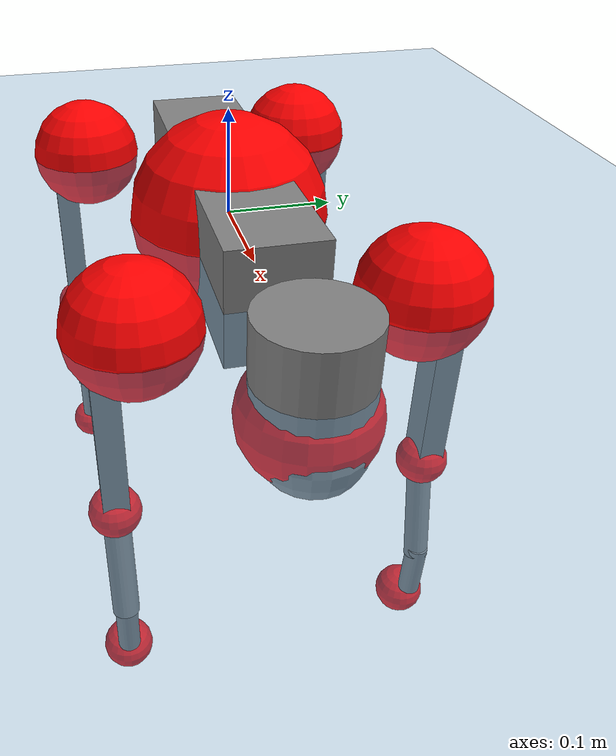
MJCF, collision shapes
<mujoco model="go2">
  <compiler angle="radian" assetdir="assets" balanceinertia="true" inertiafromgeom="false"/>

  <option timestep="0.005" density="1.2" viscosity="2e-05"/>

  <size nkey="1"/>

  <visual>
    <quality shadowsize="8192"/>
    <map shadowclip="0.5"/>
  </visual>

  <default>
    <default class="/">
      <geom contype="0" conaffinity="0" group="1" solref="-1000 -80"/>
      <site size="0.01 0.005 0.005" group="5"/>
      <general forcelimited="true" biastype="affine" gainprm="20" biasprm="0 -20 -0.5"/>
      <default class="go2">
        <joint armature="0.01" damping="0.01" frictionloss="0.2"/>
        <geom condim="1" margin="0.001"/>
        <default class="visual">
          <geom type="mesh" group="2"/>
        </default>
        <default class="collision">
          <geom group="3"/>
          <default class="foot">
            <geom size="0.022 0 0" condim="6" priority="1" friction="0.8 0.02 0.01" solimp="0.015 1 0.022"/>
          </default>
        </default>
        <default class="reward_collision_sphere">
          <geom group="5" rgba="1 0 0 1"/>
        </default>
      </default>
    </default>
  </default>

  <asset>
    <texture type="skybox" colorspace="auto" name="//unnamed_texture_0" builtin="gradient" rgb1="0.95 0.95 0.95" rgb2="0.95 0.95 0.95" width="100" height="600"/>
    <texture type="2d" colorspace="auto" name="texplane" builtin="checker" rgb1="0.345 0.575 0.748" rgb2="0.345 0.575 0.748" markrgb="1 1 1" width="512" height="512"/>
    <material name="MatPlane" class="/" texture="texplane" texuniform="true" texrepeat="2 2" specular="0.9"/>
    <material name="metal" class="/" rgba="0.9 0.95 0.95 1"/>
    <material name="black" class="/" rgba="0 0 0 1"/>
    <material name="white" class="/"/>
    <material name="gray" class="/" rgba="0.671705 0.692426 0.77427 1"/>
    <mesh name="base_0" class="/" file="base_0.obj"/>
    <mesh name="base_1" class="/" file="base_1.obj"/>
    <mesh name="base_2" class="/" file="base_2.obj"/>
    <mesh name="base_3" class="/" file="base_3.obj"/>
    <mesh name="base_4" class="/" file="base_4.obj"/>
    <mesh name="hip_0" class="/" file="hip_0.obj"/>
    <mesh name="hip_1" class="/" file="hip_1.obj"/>
    <mesh name="thigh_0" class="/" file="thigh_0.obj"/>
    <mesh name="thigh_1" class="/" file="thigh_1.obj"/>
    <mesh name="thigh_mirror_0" class="/" file="thigh_mirror_0.obj"/>
    <mesh name="thigh_mirror_1" class="/" file="thigh_mirror_1.obj"/>
    <mesh name="calf_0" class="/" file="calf_0.obj"/>
    <mesh name="calf_1" class="/" file="calf_1.obj"/>
    <mesh name="calf_mirror_0" class="/" file="calf_mirror_0.obj"/>
    <mesh name="calf_mirror_1" class="/" file="calf_mirror_1.obj"/>
    <mesh name="foot" class="/" file="foot.obj"/>
  </asset>

  <worldbody>
    <geom name="floor" class="/" size="100 100 0.125" type="plane" group="0" material="MatPlane"/>
    <light name="toplight_shadow" class="/" pos="0 0 5" dir="0.0990148 0.0990148 -0.990148" type="directional" ambient="0.04 0.04 0.04" diffuse="0.55 0.55 0.55" specular="0.12 0.12 0.12"/>
    <light name="toplight_fill" class="/" pos="0 0 5" dir="0.0990148 0.0990148 -0.990148" type="directional" castshadow="false" ambient="0.04 0.04 0.04" diffuse="0.3 0.3 0.3" specular="0.08 0.08 0.08"/>
    <body name="trunk" childclass="go2" pos="-2.52451e-05 -4.16852e-05 0.000628851" quat="1 -5.74631e-05 -7.50895e-05 -7.17479e-05">
      <inertial pos="0.0196836 0.000615221 -0.00492" quat="-0.000772512 0.713444 -0.00159255 0.70071" mass="5.83908" diaginertia="0.0829631 0.103645 0.0118027"/>
      <joint name="//unnamed_joint_0" type="free" armature="0" damping="0" frictionloss="0"/>
      <geom name="//unnamed_geom_1" class="visual" material="black" mesh="base_0"/>
      <geom name="//unnamed_geom_2" class="visual" material="black" mesh="base_1"/>
      <geom name="//unnamed_geom_3" class="visual" material="black" mesh="base_2"/>
      <geom name="//unnamed_geom_4" class="visual" material="white" mesh="base_3"/>
      <geom name="//unnamed_geom_5" class="visual" material="gray" mesh="base_4"/>
      <geom name="trunk_1" class="collision" size="0.176731 0.0439243 0.0535548" type="box"/>
      <geom name="trunk_2" class="collision" size="0.0469779 0.0422801" pos="0.270093 0 0.00861875" type="cylinder"/>
      <geom name="trunk_3" class="collision" size="0.0441592" pos="0.277674 0 -0.0517125"/>
      <geom name="//unnamed_geom_9" class="reward_collision_sphere" size="0.0939558"/>
      <geom name="//unnamed_geom_10" class="reward_collision_sphere" size="0.0563735" pos="0.265354 0 -0.0387844"/>
      <site name="imu" pos="-0.0258448 0.00473593 0.0340662" size="0.00939558"/>
      <camera name="track" pos="0 -2.01821 0" quat="0.707107 0.707107 0 0" mode="trackcom"/>
      <camera name="ego_camera" pos="0.29568 0 0.0387844" quat="-0.5 -0.5 0.5 0.5"/>
      <body name="FL_hip" pos="0.182521 0.0478859 0.00118974" quat="1 -1.3967e-05 3.56141e-05 9.25922e-05">
        <inertial pos="-0.00516936 0.00240684 0.000784444" quat="0.497463 0.497784 0.504969 0.499748" mass="0.560779" diaginertia="0.000676247 0.00063084 0.000225523"/>
        <joint name="FL_hip_joint" pos="0 0 0" axis="0.999991 0.00139771 0.00403518" stiffness="2.74371e-05" range="-1.03547 1.05084" armature="0.00898114" damping="0.00210995" frictionloss="0.188161"/>
        <geom name="//unnamed_geom_11" class="visual" material="metal" mesh="hip_0"/>
        <geom name="//unnamed_geom_12" class="visual" material="gray" mesh="hip_1"/>
        <geom name="//unnamed_geom_13" class="collision" size="0.0432197 0.0187912" pos="0 0.0807285 0" quat="0.707107 0.707107 0 0" type="cylinder"/>
        <geom name="//unnamed_geom_14" class="reward_collision_sphere" size="0.0563735" pos="0 0.0706375 0"/>
        <body name="FL_thigh" pos="-9.94384e-05 0.0963853 0.00159053" quat="1 -6.31576e-08 -1.29933e-06 6.93526e-07">
          <inertial pos="-0.00348115 -0.0223843 -0.0271704" quat="0.829609 0.0845048 -0.0185187 0.551602" mass="0.95441" diaginertia="0.00456875 0.00606102 0.000410156"/>
          <joint name="FL_thigh_joint" pos="0 0 0" axis="-0.00158313 0.999997 -0.00181994" stiffness="0.00566429" range="-1.55038 3.47529" armature="0.00956536" damping="0.00398139" frictionloss="0.18843"/>
          <geom name="//unnamed_geom_15" class="visual" material="metal" mesh="thigh_0"/>
          <geom name="//unnamed_geom_16" class="visual" material="gray" mesh="thigh_1"/>
          <geom name="//unnamed_geom_17" class="collision" size="0.100063 0.0115096 0.0159725" pos="0 0 -0.0917897" quat="0.707107 0 0.707107 0" type="box"/>
          <body name="FL_calf" pos="0.000207967 -0.00136448 -0.183784" quat="1 0.000153421 0.000224111 -0.000170885">
            <inertial pos="0.00624922 -0.000532642 -0.121224" quat="0.710674 0.00130948 -0.00459707 0.703506" mass="0.202474" diaginertia="0.00114038 0.00152443 2.53586e-05"/>
            <joint name="FL_calf_joint" pos="0 0 0" axis="0.00544587 0.999984 -0.00138123" stiffness="0.000887725" range="-2.71955 -0.846997" armature="0.00960592" damping="0" frictionloss="0.193852"/>
            <geom name="//unnamed_geom_18" class="visual" material="gray" mesh="calf_0"/>
            <geom name="//unnamed_geom_19" class="visual" material="black" mesh="calf_1"/>
            <geom name="FL_calf0" class="collision" size="0.0112747 0.0563735" pos="0.00758154 0 -0.0517125" quat="0.994493 0 -0.104807 0" type="cylinder"/>
            <geom name="//unnamed_geom_21" class="collision" size="0.0103351 0.0305356" pos="0.0189539 0 -0.127557" quat="0.999688 0 0.0249974 0" type="cylinder"/>
            <geom name="//unnamed_geom_22" class="visual" pos="0 0 -0.183579" quat="1 0 0 0" material="black" mesh="foot"/>
            <geom name="FL_foot" class="foot" size="0.0176395" pos="-0.00189539 0 -0.183579"/>
            <geom name="//unnamed_geom_24" class="reward_collision_sphere" size="0.023489"/>
            <geom name="//unnamed_geom_25" class="reward_collision_sphere" size="0.023489" pos="-0.00189539 0 -0.183579"/>
            <site name="FL_foot" class="foot" pos="-0.00189539 0 -0.183579" size="0.00939558"/>
          </body>
        </body>
      </body>
      <body name="FR_hip" pos="0.182944 -0.0453165 0.000295311" quat="1 -6.1198e-05 -0.000103693 -0.000170329">
        <inertial pos="-0.00497767 -0.0019834 -0.00085912" quat="0.498608 0.505857 0.498817 0.496669" mass="0.559023" diaginertia="0.000673974 0.000627384 0.000228401"/>
        <joint name="FR_hip_joint" pos="0 0 0" axis="1 0.000363161 3.97787e-05" range="-1.05528 1.03563" armature="0.00936285" damping="0.0120009" frictionloss="0.19604"/>
        <geom name="//unnamed_geom_26" class="visual" pos="0 1.28262e-09 5.50143e-08" quat="4.63268e-05 1 0 0" material="metal" mesh="hip_0"/>
        <geom name="//unnamed_geom_27" class="visual" pos="0 2.07928e-09 -1.36071e-07" quat="4.63268e-05 1 0 0" material="gray" mesh="hip_1"/>
        <geom name="//unnamed_geom_28" class="collision" size="0.0432197 0.0187912" pos="0 -0.0807285 0" quat="0.707107 0.707107 0 0" type="cylinder"/>
        <geom name="//unnamed_geom_29" class="reward_collision_sphere" size="0.0563735" pos="0 -0.0706375 0"/>
        <body name="FR_thigh" pos="0.0015623 -0.0965108 -6.0819e-05" quat="1 4.55725e-05 4.57622e-06 -0.000223233">
          <inertial pos="-0.00370348 0.0221857 -0.0280478" quat="0.55151 -0.0198633 0.0845458 0.829635" mass="0.981692" diaginertia="0.00458426 0.00626728 0.000427267"/>
          <joint name="FR_thigh_joint" pos="0 0 0" axis="0.00595602 -0.999981 -0.00177185" stiffness="0.000593895" range="-3.46427 1.55599" armature="0.00938587" damping="0.0108292" frictionloss="0.184443"/>
          <geom name="//unnamed_geom_30" class="visual" material="metal" mesh="thigh_mirror_0"/>
          <geom name="//unnamed_geom_31" class="visual" material="gray" mesh="thigh_mirror_1"/>
          <geom name="//unnamed_geom_32" class="collision" size="0.100063 0.0115096 0.0159725" pos="0 0 -0.0917897" quat="0.707107 0 0.707107 0" type="box"/>
          <body name="FR_calf" pos="0.000456304 -0.000702064 -0.184329" quat="1 -0.000169202 -0.000177072 1.25354e-05">
            <inertial pos="0.00633164 0.000285325 -0.121109" quat="0.703503 -0.00462296 0.00162755 0.710676" mass="0.196521" diaginertia="0.00112589 0.0015345 2.53141e-05"/>
            <joint name="FR_calf_joint" pos="0 0 0" axis="0.00835364 -0.999961 0.0027962" range="0.837184 2.72206" armature="0.00945977" damping="0.00865849" frictionloss="0.175271"/>
            <geom name="//unnamed_geom_33" class="visual" material="gray" mesh="calf_mirror_0"/>
            <geom name="//unnamed_geom_34" class="visual" material="black" mesh="calf_mirror_1"/>
            <geom name="FR_calf0" class="collision" size="0.0122143 0.0563735" pos="0.00947693 0 -0.0517125" quat="0.995004 0 -0.0998334 0" type="cylinder"/>
            <geom name="//unnamed_geom_36" class="collision" size="0.0103351 0.0305356" pos="0.0189539 0 -0.127557" quat="0.999688 0 0.0249974 0" type="cylinder"/>
            <geom name="//unnamed_geom_37" class="visual" pos="0 0 -0.183579" quat="1 0 0 0" material="black" mesh="foot"/>
            <geom name="FR_foot" class="foot" size="0.0215938" pos="-0.00189539 0 -0.183579"/>
            <geom name="//unnamed_geom_39" class="reward_collision_sphere" size="0.023489"/>
            <geom name="//unnamed_geom_40" class="reward_collision_sphere" size="0.023489" pos="-0.00189539 0 -0.183579"/>
            <site name="FR_foot" class="foot" pos="-0.00189539 0 -0.183579" size="0.00939558"/>
          </body>
        </body>
      </body>
      <body name="RL_hip" pos="-0.183934 0.0471577 -4.65312e-07" quat="1 1.73795e-05 -9.74989e-05 -0.000115342">
        <inertial pos="0.00595462 0.00233055 0.000527226" quat="0.505095 0.494383 0.503346 0.497099" mass="0.552394" diaginertia="0.000673653 0.000617543 0.000230578"/>
        <joint name="RL_hip_joint" pos="0 0 0" axis="-0.9999 0.0141042 0.000528408" range="-1.04023 1.06347" armature="0.00938636" damping="0.0158623" frictionloss="0.179158"/>
        <geom name="//unnamed_geom_41" class="visual" pos="-7.47614e-10 0 -1.4655e-07" quat="4.63268e-05 0 1 0" material="metal" mesh="hip_0"/>
        <geom name="//unnamed_geom_42" class="visual" pos="-1.21197e-09 0 -1.29969e-07" quat="4.63268e-05 0 1 0" material="gray" mesh="hip_1"/>
        <geom name="//unnamed_geom_43" class="collision" size="0.0432197 0.0187912" pos="0 0.0807285 0" quat="0.707107 0.707107 0 0" type="cylinder"/>
        <geom name="//unnamed_geom_44" class="reward_collision_sphere" size="0.0563735" pos="0 0.0706375 0"/>
        <body name="RL_thigh" pos="0.000165346 0.0963325 -0.000351479" quat="1 -0.000108093 0.000455269 0.000119622">
          <inertial pos="-0.00314153 -0.0216005 -0.028233" quat="0.828635 0.0827412 -0.0203901 0.553265" mass="0.965553" diaginertia="0.00455752 0.00623769 0.00041681"/>
          <joint name="RL_thigh_joint" pos="0 0 0" axis="-0.000652934 1 4.27716e-05" range="-0.524786 4.53448" armature="0.00940118" damping="0.00992858" frictionloss="0.189077"/>
          <geom name="//unnamed_geom_45" class="visual" material="metal" mesh="thigh_0"/>
          <geom name="//unnamed_geom_46" class="visual" material="gray" mesh="thigh_1"/>
          <geom name="//unnamed_geom_47" class="collision" size="0.100063 0.0115096 0.0159725" pos="0 0 -0.0917897" quat="0.707107 0 0.707107 0" type="box"/>
          <body name="RL_calf" pos="0.000210094 -0.000678607 -0.183784" quat="1 3.97287e-06 1.39617e-05 -3.03817e-05">
            <inertial pos="0.00558138 -0.000391077 -0.121142" quat="0.710701 0.00133749 -0.00456734 0.703478" mass="0.203218" diaginertia="0.00116275 0.00157147 2.62524e-05"/>
            <joint name="RL_calf_joint" pos="0 0 0" axis="0.00929952 0.999956 -0.000862871" range="-2.72459 -0.868768" armature="0.00944734" damping="0" frictionloss="0.179752"/>
            <geom name="//unnamed_geom_48" class="visual" material="gray" mesh="calf_0"/>
            <geom name="//unnamed_geom_49" class="visual" material="black" mesh="calf_1"/>
            <geom name="RL_calf0" class="collision" size="0.0122143 0.0563735" pos="0.00947693 0 -0.0517125" quat="0.995004 0 -0.0998334 0" type="cylinder"/>
            <geom name="//unnamed_geom_51" class="collision" size="0.0103351 0.0305356" pos="0.0189539 0 -0.127557" quat="0.999688 0 0.0249974 0" type="cylinder"/>
            <geom name="//unnamed_geom_52" class="visual" pos="0 0 -0.183579" quat="1 0 0 0" material="black" mesh="foot"/>
            <geom name="RL_foot" class="foot" size="0.0172765" pos="-0.00189539 0 -0.183579"/>
            <geom name="//unnamed_geom_54" class="reward_collision_sphere" size="0.023489"/>
            <geom name="//unnamed_geom_55" class="reward_collision_sphere" size="0.023489" pos="-0.00189539 0 -0.183579"/>
            <site name="RL_foot" class="foot" pos="-0.00189539 0 -0.183579" size="0.00939558"/>
          </body>
        </body>
      </body>
      <body name="RR_hip" pos="-0.183357 -0.048687 -0.0011964" quat="1 1.29183e-05 -0.000144303 0.000211558">
        <inertial pos="0.00552941 -0.00282909 0.000609492" quat="0.498226 0.492013 0.500805 0.50881" mass="0.566933" diaginertia="0.000675102 0.000637072 0.000230245"/>
        <joint name="RR_hip_joint" pos="0 0 0" axis="-0.999986 0.000703967 0.00527841" stiffness="0.000920219" range="-1.04819 1.05639" armature="0.009258" damping="0.0101968" frictionloss="0.179571"/>
        <geom name="//unnamed_geom_56" class="visual" pos="7.4974e-10 1.28262e-09 -2.01564e-07" quat="2.14617e-09 4.63268e-05 4.63268e-05 -1" material="metal" mesh="hip_0"/>
        <geom name="//unnamed_geom_57" class="visual" pos="1.20671e-09 2.07928e-09 6.10284e-09" quat="2.14617e-09 4.63268e-05 4.63268e-05 -1" material="gray" mesh="hip_1"/>
        <geom name="//unnamed_geom_58" class="collision" size="0.0432197 0.0187912" pos="0 -0.0807285 0" quat="0.707107 0.707107 0 0" type="cylinder"/>
        <geom name="//unnamed_geom_59" class="reward_collision_sphere" size="0.0563735" pos="0 -0.0706375 0"/>
        <body name="RR_thigh" pos="0.000182678 -0.0970387 -0.00268533" quat="1 0.000154151 3.86374e-05 -7.84623e-05">
          <inertial pos="-0.00339843 0.0240038 -0.0292145" quat="0.552013 -0.0187384 0.0848607 0.829295" mass="0.940465" diaginertia="0.00448426 0.00601078 0.000410365"/>
          <joint name="RR_thigh_joint" pos="0 0 0" axis="-0.00233452 -0.999953 0.00940329" range="-4.55149 0.511078" armature="0.0100872" damping="0.01746" frictionloss="0.186948"/>
          <geom name="//unnamed_geom_60" class="visual" material="metal" mesh="thigh_mirror_0"/>
          <geom name="//unnamed_geom_61" class="visual" material="gray" mesh="thigh_mirror_1"/>
          <geom name="//unnamed_geom_62" class="collision" size="0.100063 0.0115096 0.0159725" pos="0 0 -0.0917897" quat="0.707107 0 0.707107 0" type="box"/>
          <body name="RR_calf" pos="0.000808415 -0.000553866 -0.184001" quat="1 6.42442e-05 -4.803e-05 -0.000111122">
            <inertial pos="0.00487561 0.00083398 -0.122268" quat="0.706342 -0.00694057 0.000296414 0.707837" mass="0.201205" diaginertia="0.00115945 0.00155018 2.60192e-05"/>
            <joint name="RR_calf_joint" pos="0 0 0" axis="0.0015755 -0.999997 -0.00211757" stiffness="4.80121e-05" range="0.83471 2.7334" armature="0.00953273" damping="0.00939958" frictionloss="0.192039"/>
            <geom name="//unnamed_geom_63" class="visual" material="gray" mesh="calf_mirror_0"/>
            <geom name="//unnamed_geom_64" class="visual" material="black" mesh="calf_mirror_1"/>
            <geom name="RR_calf0" class="collision" size="0.0122143 0.0563735" pos="0.00947693 0 -0.0517125" quat="0.995004 0 -0.0998334 0" type="cylinder"/>
            <geom name="//unnamed_geom_66" class="collision" size="0.0103351 0.0305356" pos="0.0189539 0 -0.127557" quat="0.999688 0 0.0249974 0" type="cylinder"/>
            <geom name="//unnamed_geom_67" class="visual" pos="0 0 -0.183579" quat="1 0 0 0" material="black" mesh="foot"/>
            <geom name="RR_foot" class="foot" size="0.0210475" pos="-0.00189539 0 -0.183579"/>
            <geom name="//unnamed_geom_69" class="reward_collision_sphere" size="0.023489"/>
            <geom name="//unnamed_geom_70" class="reward_collision_sphere" size="0.023489" pos="-0.00189539 0 -0.183579"/>
            <site name="RR_foot" class="foot" pos="-0.00189539 0 -0.183579" size="0.00939558"/>
          </body>
        </body>
      </body>
    </body>
  </worldbody>

  <contact>
    <pair class="/" geom1="floor" geom2="FL_foot" name="//unnamed_contact_0"/>
    <pair class="/" geom1="floor" geom2="FR_foot" name="//unnamed_contact_1"/>
    <pair class="/" geom1="floor" geom2="RL_foot" name="//unnamed_contact_2"/>
    <pair class="/" geom1="floor" geom2="RR_foot" name="//unnamed_contact_3"/>
  </contact>

  <actuator>
    <general name="FL_hip" class="/" joint="FL_hip_joint" forcerange="-22.9968 22.9968" gainprm="19.2676" biasprm="0 -19.2676 -0.463302"/>
    <general name="FL_thigh" class="/" joint="FL_thigh_joint" forcerange="-21.2101 21.2101" gainprm="19.2676" biasprm="0 -19.2676 -0.463302"/>
    <general name="FL_calf" class="/" joint="FL_calf_joint" forcerange="-42.712 42.712" gainprm="19.2676" biasprm="0 -19.2676 -0.463302"/>
    <general name="FR_hip" class="/" joint="FR_hip_joint" forcerange="-22.1851 22.1851" gainprm="19.2676" biasprm="0 -19.2676 -0.463302"/>
    <general name="FR_thigh" class="/" joint="FR_thigh_joint" forcerange="-21.8415 21.8415" gainprm="19.2676" biasprm="0 -19.2676 -0.463302"/>
    <general name="FR_calf" class="/" joint="FR_calf_joint" forcerange="-43.6455 43.6455" gainprm="19.2676" biasprm="0 -19.2676 -0.463302"/>
    <general name="RL_hip" class="/" joint="RL_hip_joint" forcerange="-21.6252 21.6252" gainprm="19.2676" biasprm="0 -19.2676 -0.463302"/>
    <general name="RL_thigh" class="/" joint="RL_thigh_joint" forcerange="-22.3106 22.3106" gainprm="19.2676" biasprm="0 -19.2676 -0.463302"/>
    <general name="RL_calf" class="/" joint="RL_calf_joint" forcerange="-44.1562 44.1562" gainprm="19.2676" biasprm="0 -19.2676 -0.463302"/>
    <general name="RR_hip" class="/" joint="RR_hip_joint" forcerange="-21.2417 21.2417" gainprm="19.2676" biasprm="0 -19.2676 -0.463302"/>
    <general name="RR_thigh" class="/" joint="RR_thigh_joint" forcerange="-21.8476 21.8476" gainprm="19.2676" biasprm="0 -19.2676 -0.463302"/>
    <general name="RR_calf" class="/" joint="RR_calf_joint" forcerange="-41.9917 41.9917" gainprm="19.2676" biasprm="0 -19.2676 -0.463302"/>
  </actuator>

  <sensor>
    <gyro site="imu" name="imu_angular_velocity"/>
    <velocimeter site="imu" name="imu_linear_velocity"/>
    <framelinvel objtype="site" objname="FL_foot" name="FL_foot_global_linear_velocity"/>
    <framelinvel objtype="site" objname="FR_foot" name="FR_foot_global_linear_velocity"/>
    <framelinvel objtype="site" objname="RL_foot" name="RL_foot_global_linear_velocity"/>
    <framelinvel objtype="site" objname="RR_foot" name="RR_foot_global_linear_velocity"/>
  </sensor>

  <keyframe>
    <key name="home" qpos="0 0 0.325 1 0 0 0 0.1 0.8 -1.5 -0.1 -0.8 1.5 -0.1 0.8 -1.5 0.1 -0.8 1.5"/>
  </keyframe>
</mujoco>
